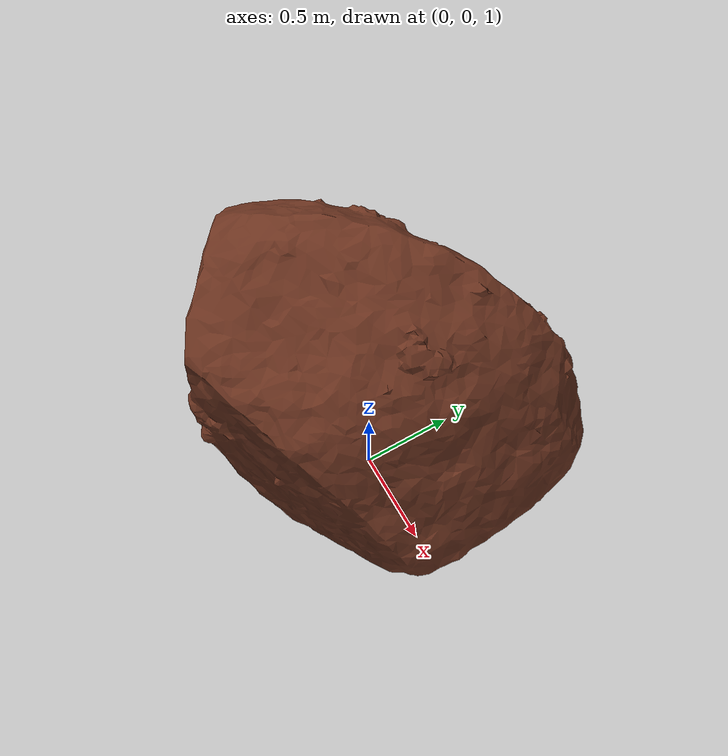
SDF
<?xml version="1.0" ?>
<sdf version="1.6">
  <model name="mars_rock">
    <pose>0 0 0 0 0 0</pose>
    <link name="link">
      <collision name='collision'>
        <laser_retro>0</laser_retro>
        <max_contacts>10</max_contacts>
        <pose>0 0 0 0 0 0</pose>
        <geometry>
          <mesh>
            <uri>model://mars_rock/meshes/model.dae</uri>
          </mesh>
        </geometry>
        <surface>
          <friction>
            <ode>
              <mu>1</mu>
              <mu2>1</mu2>
              <fdir1>0 0 0</fdir1>
              <slip1>0</slip1>
              <slip2>0</slip2>
            </ode>
            <torsional>
              <coefficient>1</coefficient>
              <patch_radius>0</patch_radius>
              <surface_radius>0</surface_radius>
              <use_patch_radius>1</use_patch_radius>
              <ode>
                <slip>0</slip>
              </ode>
            </torsional>
          </friction>
          <bounce>
            <restitution_coefficient>0</restitution_coefficient>
            <threshold>1e+06</threshold>
          </bounce>
          <contact>
            <collide_without_contact>0</collide_without_contact>
            <collide_without_contact_bitmask>1</collide_without_contact_bitmask>
            <collide_bitmask>1</collide_bitmask>
            <ode>
              <soft_cfm>0</soft_cfm>
              <soft_erp>0.2</soft_erp>
              <kp>1e+13</kp>
              <kd>1</kd>
              <max_vel>0.01</max_vel>
              <min_depth>0</min_depth>
            </ode>
            <bullet>
              <split_impulse>1</split_impulse>
              <split_impulse_penetration_threshold>-0.01</split_impulse_penetration_threshold>
              <soft_cfm>0</soft_cfm>
              <soft_erp>0.2</soft_erp>
              <kp>1e+13</kp>
              <kd>1</kd>
            </bullet>
          </contact>
        </surface>
      </collision>
      <visual name="visual">
        <geometry>
          <mesh>
            <uri>model://mars_rock/meshes/model.dae</uri>
          </mesh>
        </geometry>
        <material>
          <script>
            <uri>model://mars_rock/materials/scripts</uri>
            <uri>model://mars_rock/materials/textures</uri>
            <name>mars/rock</name>
          </script>
        </material>
      </visual>
    </link>
  </model>
</sdf>
